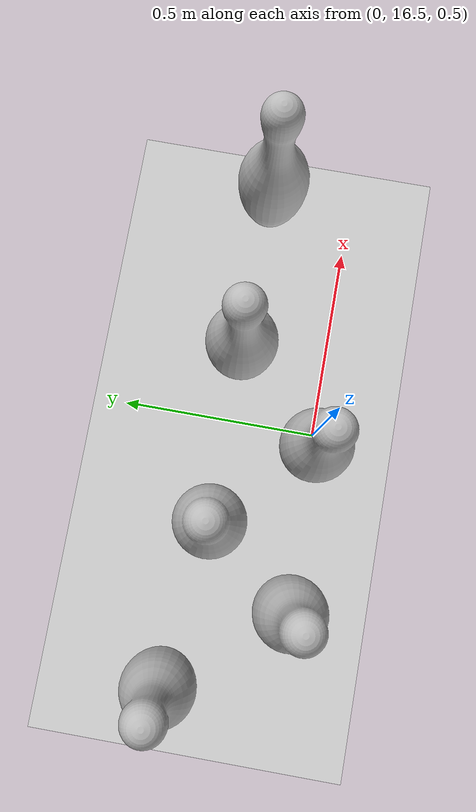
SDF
<sdf version="1.7">
 <world name="default">
  <model name="ground_plane">
   <static>1</static>
   <link name="link">
    <collision name="collision">
     <geometry><plane><normal>0 0 1</normal><size>50 100</size></plane></geometry>
     <surface>
      <contact><collide_bitmask>65535</collide_bitmask></contact>
      <friction><ode><mu>100</mu><mu2>50</mu2></ode></friction>
     </surface>
    </collision>
    <visual name="visual">
     <cast_shadows>0</cast_shadows>
     <geometry><plane><normal>0 0 1</normal><size>50 100</size></plane></geometry>
     <material>
      <script><uri>file://media/materials/scripts/gazebo.material</uri><name>Gazebo/Grey</name></script>
     </material>
    </visual>
   </link>
  </model>
  <model name="bowling_pin_clone_1">
   <link name="link_0">
    <inertial>
     <mass>1.6</mass>
     <inertia>
      <ixx>0.000212</ixx>
      <ixy>0</ixy>
      <ixz>0</ixz>
      <iyy>3.4e-05</iyy>
      <iyz>0</iyz>
      <izz>0.000212</izz>
     </inertia>
    </inertial>
    <pose>0 0 0 1.5707 -0 0</pose>
    <visual name="visual">
     <geometry><mesh><uri>model://bowling_pin/meshes/bowling-pin.obj</uri><scale>1 1 1</scale></mesh></geometry>
    </visual>
    <collision name="collision">
     <geometry><mesh><uri>model://bowling_pin/meshes/bowling-pin.obj</uri><scale>1 1 1</scale></mesh></geometry>
     <surface>
      <friction>
       <ode><mu>0.4</mu><mu2>0.4</mu2><fdir1>0 0 0</fdir1><slip1>0</slip1><slip2>0</slip2></ode>
       <torsional>
        <coefficient>1</coefficient>
        <patch_radius>0</patch_radius>
        <surface_radius>0</surface_radius>
        <use_patch_radius>1</use_patch_radius>
        <ode><slip>0</slip></ode>
       </torsional>
      </friction>
      <bounce><restitution_coefficient>0</restitution_coefficient><threshold>1e+06</threshold></bounce>
      <contact>
       <collide_without_contact>0</collide_without_contact>
       <collide_without_contact_bitmask>1</collide_without_contact_bitmask>
       <collide_bitmask>1</collide_bitmask>
       <ode>
        <soft_cfm>0</soft_cfm>
        <soft_erp>0.2</soft_erp>
        <kp>1e+13</kp>
        <kd>1</kd>
        <max_vel>1</max_vel>
        <min_depth>0</min_depth>
       </ode>
       <bullet>
        <split_impulse>1</split_impulse>
        <split_impulse_penetration_threshold>-0.01</split_impulse_penetration_threshold>
        <soft_cfm>0</soft_cfm>
        <soft_erp>0.2</soft_erp>
        <kp>1e+13</kp>
        <kd>1</kd>
       </bullet>
      </contact>
     </surface>
    </collision>
   </link>
   <static>0</static>
   <pose>-0.467818 16.4768 0.457947 -2.4e-05 -3e-06 -0.014537</pose>
  </model>
  <model name="bowling_pin_clone_2">
   <link name="link_0">
    <inertial>
     <mass>1.6</mass>
     <inertia>
      <ixx>0.000212</ixx>
      <ixy>0</ixy>
      <ixz>0</ixz>
      <iyy>3.4e-05</iyy>
      <iyz>0</iyz>
      <izz>0.000212</izz>
     </inertia>
    </inertial>
    <pose>0 0 0 1.5707 -0 0</pose>
    <visual name="visual">
     <geometry><mesh><uri>model://bowling_pin/meshes/bowling-pin.obj</uri><scale>1 1 1</scale></mesh></geometry>
    </visual>
    <collision name="collision">
     <geometry><mesh><uri>model://bowling_pin/meshes/bowling-pin.obj</uri><scale>1 1 1</scale></mesh></geometry>
     <surface>
      <friction>
       <ode><mu>0.4</mu><mu2>0.4</mu2><fdir1>0 0 0</fdir1><slip1>0</slip1><slip2>0</slip2></ode>
       <torsional>
        <coefficient>1</coefficient>
        <patch_radius>0</patch_radius>
        <surface_radius>0</surface_radius>
        <use_patch_radius>1</use_patch_radius>
        <ode><slip>0</slip></ode>
       </torsional>
      </friction>
      <bounce><restitution_coefficient>0</restitution_coefficient><threshold>1e+06</threshold></bounce>
      <contact>
       <collide_without_contact>0</collide_without_contact>
       <collide_without_contact_bitmask>1</collide_without_contact_bitmask>
       <collide_bitmask>1</collide_bitmask>
       <ode>
        <soft_cfm>0</soft_cfm>
        <soft_erp>0.2</soft_erp>
        <kp>1e+13</kp>
        <kd>1</kd>
        <max_vel>1</max_vel>
        <min_depth>0</min_depth>
       </ode>
       <bullet>
        <split_impulse>1</split_impulse>
        <split_impulse_penetration_threshold>-0.01</split_impulse_penetration_threshold>
        <soft_cfm>0</soft_cfm>
        <soft_erp>0.2</soft_erp>
        <kp>1e+13</kp>
        <kd>1</kd>
       </bullet>
      </contact>
     </surface>
    </collision>
   </link>
   <static>0</static>
   <pose>-0.018008 16.4792 0.457947 0 1e-06 -0.014194</pose>
  </model>
  <model name="bowling_pin_clone_4">
   <link name="link_0">
    <inertial>
     <mass>1.6</mass>
     <inertia>
      <ixx>0.000212</ixx>
      <ixy>0</ixy>
      <ixz>0</ixz>
      <iyy>3.4e-05</iyy>
      <iyz>0</iyz>
      <izz>0.000212</izz>
     </inertia>
    </inertial>
    <pose>0 0 0 1.5707 -0 0</pose>
    <visual name="visual">
     <geometry><mesh><uri>model://bowling_pin/meshes/bowling-pin.obj</uri><scale>1 1 1</scale></mesh></geometry>
    </visual>
    <collision name="collision">
     <geometry><mesh><uri>model://bowling_pin/meshes/bowling-pin.obj</uri><scale>1 1 1</scale></mesh></geometry>
     <surface>
      <friction>
       <ode><mu>0.4</mu><mu2>0.4</mu2><fdir1>0 0 0</fdir1><slip1>0</slip1><slip2>0</slip2></ode>
       <torsional>
        <coefficient>1</coefficient>
        <patch_radius>0</patch_radius>
        <surface_radius>0</surface_radius>
        <use_patch_radius>1</use_patch_radius>
        <ode><slip>0</slip></ode>
       </torsional>
      </friction>
      <bounce><restitution_coefficient>0</restitution_coefficient><threshold>1e+06</threshold></bounce>
      <contact>
       <collide_without_contact>0</collide_without_contact>
       <collide_without_contact_bitmask>1</collide_without_contact_bitmask>
       <collide_bitmask>1</collide_bitmask>
       <ode>
        <soft_cfm>0</soft_cfm>
        <soft_erp>0.2</soft_erp>
        <kp>1e+13</kp>
        <kd>1</kd>
        <max_vel>1</max_vel>
        <min_depth>0</min_depth>
       </ode>
       <bullet>
        <split_impulse>1</split_impulse>
        <split_impulse_penetration_threshold>-0.01</split_impulse_penetration_threshold>
        <soft_cfm>0</soft_cfm>
        <soft_erp>0.2</soft_erp>
        <kp>1e+13</kp>
        <kd>1</kd>
       </bullet>
      </contact>
     </surface>
    </collision>
   </link>
   <static>0</static>
   <pose>-0.714114 16.7831 0.457916 -4.2e-05 -1.4e-05 -0.01397</pose>
  </model>
  <model name="bowling_pin_clone_5">
   <link name="link_0">
    <inertial>
     <mass>1.6</mass>
     <inertia>
      <ixx>0.000212</ixx>
      <ixy>0</ixy>
      <ixz>0</ixz>
      <iyy>3.4e-05</iyy>
      <iyz>0</iyz>
      <izz>0.000212</izz>
     </inertia>
    </inertial>
    <pose>0 0 0 1.5707 -0 0</pose>
    <visual name="visual">
     <geometry><mesh><uri>model://bowling_pin/meshes/bowling-pin.obj</uri><scale>1 1 1</scale></mesh></geometry>
    </visual>
    <collision name="collision">
     <geometry><mesh><uri>model://bowling_pin/meshes/bowling-pin.obj</uri><scale>1 1 1</scale></mesh></geometry>
     <surface>
      <friction>
       <ode><mu>0.4</mu><mu2>0.4</mu2><fdir1>0 0 0</fdir1><slip1>0</slip1><slip2>0</slip2></ode>
       <torsional>
        <coefficient>1</coefficient>
        <patch_radius>0</patch_radius>
        <surface_radius>0</surface_radius>
        <use_patch_radius>1</use_patch_radius>
        <ode><slip>0</slip></ode>
       </torsional>
      </friction>
      <bounce><restitution_coefficient>0</restitution_coefficient><threshold>1e+06</threshold></bounce>
      <contact>
       <collide_without_contact>0</collide_without_contact>
       <collide_without_contact_bitmask>1</collide_without_contact_bitmask>
       <collide_bitmask>1</collide_bitmask>
       <ode>
        <soft_cfm>0</soft_cfm>
        <soft_erp>0.2</soft_erp>
        <kp>1e+13</kp>
        <kd>1</kd>
        <max_vel>1</max_vel>
        <min_depth>0</min_depth>
       </ode>
       <bullet>
        <split_impulse>1</split_impulse>
        <split_impulse_penetration_threshold>-0.01</split_impulse_penetration_threshold>
        <soft_cfm>0</soft_cfm>
        <soft_erp>0.2</soft_erp>
        <kp>1e+13</kp>
        <kd>1</kd>
       </bullet>
      </contact>
     </surface>
    </collision>
   </link>
   <static>0</static>
   <pose>-0.268352 16.7277 0.457911 3e-06 1e-06 -0.014634</pose>
  </model>
  <model name="bowling_pin_clone_6">
   <link name="link_0">
    <inertial>
     <mass>1.6</mass>
     <inertia>
      <ixx>0.000212</ixx>
      <ixy>0</ixy>
      <ixz>0</ixz>
      <iyy>3.4e-05</iyy>
      <iyz>0</iyz>
      <izz>0.000212</izz>
     </inertia>
    </inertial>
    <pose>0 0 0 1.5707 -0 0</pose>
    <visual name="visual">
     <geometry><mesh><uri>model://bowling_pin/meshes/bowling-pin.obj</uri><scale>1 1 1</scale></mesh></geometry>
    </visual>
    <collision name="collision">
     <geometry><mesh><uri>model://bowling_pin/meshes/bowling-pin.obj</uri><scale>1 1 1</scale></mesh></geometry>
     <surface>
      <friction>
       <ode><mu>0.4</mu><mu2>0.4</mu2><fdir1>0 0 0</fdir1><slip1>0</slip1><slip2>0</slip2></ode>
       <torsional>
        <coefficient>1</coefficient>
        <patch_radius>0</patch_radius>
        <surface_radius>0</surface_radius>
        <use_patch_radius>1</use_patch_radius>
        <ode><slip>0</slip></ode>
       </torsional>
      </friction>
      <bounce><restitution_coefficient>0</restitution_coefficient><threshold>1e+06</threshold></bounce>
      <contact>
       <collide_without_contact>0</collide_without_contact>
       <collide_without_contact_bitmask>1</collide_without_contact_bitmask>
       <collide_bitmask>1</collide_bitmask>
       <ode>
        <soft_cfm>0</soft_cfm>
        <soft_erp>0.2</soft_erp>
        <kp>1e+13</kp>
        <kd>1</kd>
        <max_vel>1</max_vel>
        <min_depth>0</min_depth>
       </ode>
       <bullet>
        <split_impulse>1</split_impulse>
        <split_impulse_penetration_threshold>-0.01</split_impulse_penetration_threshold>
        <soft_cfm>0</soft_cfm>
        <soft_erp>0.2</soft_erp>
        <kp>1e+13</kp>
        <kd>1</kd>
       </bullet>
      </contact>
     </surface>
    </collision>
   </link>
   <static>0</static>
   <pose>0.230294 16.7279 0.457922 -2.1e-05 -2.8e-05 -0.013357</pose>
  </model>
  <model name="bowling_pin_clone_7">
   <link name="link_0">
    <inertial>
     <mass>1.6</mass>
     <inertia>
      <ixx>0.000212</ixx>
      <ixy>0</ixy>
      <ixz>0</ixz>
      <iyy>3.4e-05</iyy>
      <iyz>0</iyz>
      <izz>0.000212</izz>
     </inertia>
    </inertial>
    <pose>0 0 0 1.5707 -0 0</pose>
    <visual name="visual">
     <geometry><mesh><uri>model://bowling_pin/meshes/bowling-pin.obj</uri><scale>1 1 1</scale></mesh></geometry>
    </visual>
    <collision name="collision">
     <geometry><mesh><uri>model://bowling_pin/meshes/bowling-pin.obj</uri><scale>1 1 1</scale></mesh></geometry>
     <surface>
      <friction>
       <ode><mu>0.4</mu><mu2>0.4</mu2><fdir1>0 0 0</fdir1><slip1>0</slip1><slip2>0</slip2></ode>
       <torsional>
        <coefficient>1</coefficient>
        <patch_radius>0</patch_radius>
        <surface_radius>0</surface_radius>
        <use_patch_radius>1</use_patch_radius>
        <ode><slip>0</slip></ode>
       </torsional>
      </friction>
      <bounce><restitution_coefficient>0</restitution_coefficient><threshold>1e+06</threshold></bounce>
      <contact>
       <collide_without_contact>0</collide_without_contact>
       <collide_without_contact_bitmask>1</collide_without_contact_bitmask>
       <collide_bitmask>1</collide_bitmask>
       <ode>
        <soft_cfm>0</soft_cfm>
        <soft_erp>0.2</soft_erp>
        <kp>1e+13</kp>
        <kd>1</kd>
        <max_vel>1</max_vel>
        <min_depth>0</min_depth>
       </ode>
       <bullet>
        <split_impulse>1</split_impulse>
        <split_impulse_penetration_threshold>-0.01</split_impulse_penetration_threshold>
        <soft_cfm>0</soft_cfm>
        <soft_erp>0.2</soft_erp>
        <kp>1e+13</kp>
        <kd>1</kd>
       </bullet>
      </contact>
     </surface>
    </collision>
   </link>
   <static>0</static>
   <pose>0.703728 16.7193 0.457921 -6e-06 3e-06 0.054711</pose>
  </model>
 </world>
</sdf>
